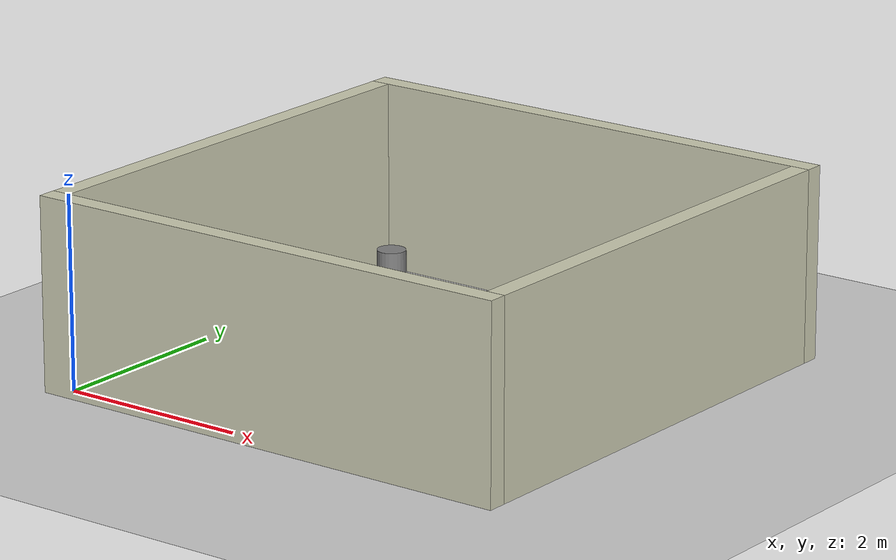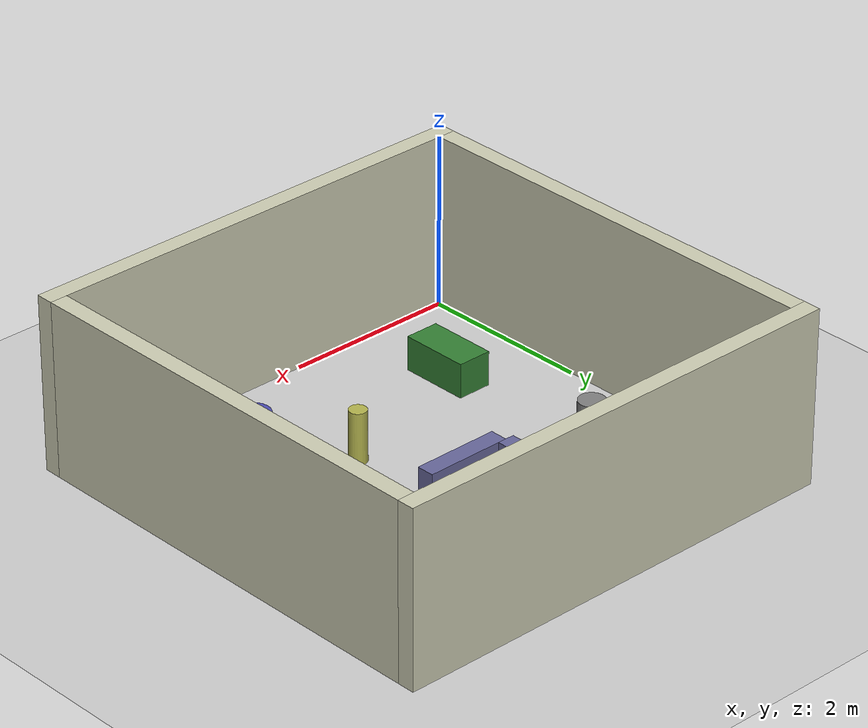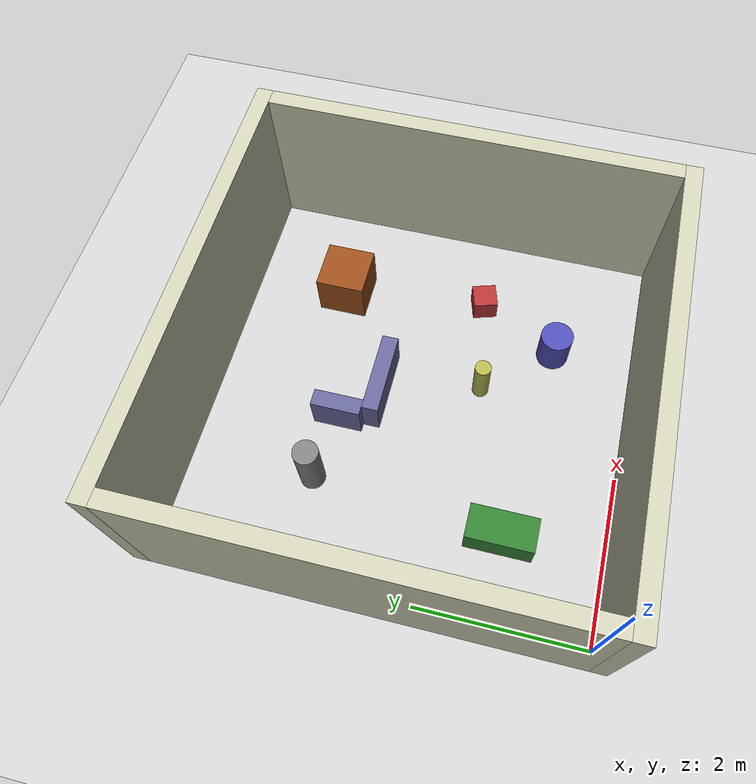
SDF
<?xml version="1.0" ?>
<sdf version="1.9">
  <world name="mapping_room">

    <!-- GAZEBO HARMONIC SYSTEM PLUGINS (required for gz-sim 8.x)       -->
    <plugin filename="gz-sim-physics-system"
            name="gz::sim::systems::Physics"/>
    <plugin filename="gz-sim-user-commands-system"
            name="gz::sim::systems::UserCommands"/>
    <plugin filename="gz-sim-scene-broadcaster-system"
            name="gz::sim::systems::SceneBroadcaster"/>
    <plugin filename="gz-sim-contact-system"
            name="gz::sim::systems::Contact"/>
    <!-- Sensors system: needed for gpu_lidar and imu sensors to work -->
    <plugin filename="gz-sim-sensors-system"
            name="gz::sim::systems::Sensors">
      <render_engine>ogre2</render_engine>
    </plugin>
    <!-- IMU system: required for IMU sensor plugin -->
    <plugin filename="gz-sim-imu-system"
            name="gz::sim::systems::Imu"/>

    <!-- PHYSICS ENGINE CONFIGURATION                                    -->
    <physics name="default_physics" type="ode">
      <max_step_size>0.001</max_step_size>
      <real_time_factor>1.0</real_time_factor>
      <real_time_update_rate>1000</real_time_update_rate>
    </physics>

    <!-- LIGHTING                                                        -->

    <!-- Directional sun light (inline — model://sun not available in Harmonic) -->
    <light type="directional" name="sun">
      <cast_shadows>true</cast_shadows>
      <pose>0 0 10 0 0 0</pose>
      <diffuse>0.8 0.8 0.8 1</diffuse>
      <specular>0.2 0.2 0.2 1</specular>
      <attenuation>
        <range>1000</range>
        <constant>0.9</constant>
        <linear>0.01</linear>
        <quadratic>0.001</quadratic>
      </attenuation>
      <direction>-0.5 0.1 -0.9</direction>
    </light>

    <!-- GROUND PLANE (inline — model://ground_plane not in Harmonic)   -->

    <model name="ground_plane">
      <static>true</static>
      <link name="link">
        <collision name="collision">
          <geometry>
            <plane>
              <normal>0 0 1</normal>
              <size>100 100</size>
            </plane>
          </geometry>
        </collision>
        <visual name="visual">
          <geometry>
            <plane>
              <normal>0 0 1</normal>
              <size>100 100</size>
            </plane>
          </geometry>
          <material>
            <ambient>0.8 0.8 0.8 1</ambient>
            <diffuse>0.8 0.8 0.8 1</diffuse>
            <specular>0.8 0.8 0.8 1</specular>
          </material>
        </visual>
      </link>
    </model>

    <!-- ROOM WALLS                                                      -->
    <!-- The room is 5m × 5m with 0.2m thick, 2.0m high walls          -->
    <!-- Walls are positioned so the interior is centered at (2.5, 2.5) -->

    <!-- North Wall (along X axis, at Y=5.0) -->
    <model name="north_wall">
      <static>true</static>
      <pose>2.5 5.1 1.0 0 0 0</pose>
      <link name="link">
        <collision name="collision">
          <geometry>
            <box><size>5.4 0.2 2.0</size></box>
          </geometry>
        </collision>
        <visual name="visual">
          <geometry>
            <box><size>5.4 0.2 2.0</size></box>
          </geometry>
          <material>
            <ambient>0.8 0.8 0.7 1</ambient>
            <diffuse>0.8 0.8 0.7 1</diffuse>
          </material>
        </visual>
      </link>
    </model>

    <!-- South Wall (along X axis, at Y=0.0) -->
    <model name="south_wall">
      <static>true</static>
      <pose>2.5 -0.1 1.0 0 0 0</pose>
      <link name="link">
        <collision name="collision">
          <geometry>
            <box><size>5.4 0.2 2.0</size></box>
          </geometry>
        </collision>
        <visual name="visual">
          <geometry>
            <box><size>5.4 0.2 2.0</size></box>
          </geometry>
          <material>
            <ambient>0.8 0.8 0.7 1</ambient>
            <diffuse>0.8 0.8 0.7 1</diffuse>
          </material>
        </visual>
      </link>
    </model>

    <!-- East Wall (along Y axis, at X=5.0) -->
    <model name="east_wall">
      <static>true</static>
      <pose>5.1 2.5 1.0 0 0 0</pose>
      <link name="link">
        <collision name="collision">
          <geometry>
            <box><size>0.2 5.0 2.0</size></box>
          </geometry>
        </collision>
        <visual name="visual">
          <geometry>
            <box><size>0.2 5.0 2.0</size></box>
          </geometry>
          <material>
            <ambient>0.8 0.8 0.7 1</ambient>
            <diffuse>0.8 0.8 0.7 1</diffuse>
          </material>
        </visual>
      </link>
    </model>

    <!-- West Wall (along Y axis, at X=0.0) -->
    <model name="west_wall">
      <static>true</static>
      <pose>-0.1 2.5 1.0 0 0 0</pose>
      <link name="link">
        <collision name="collision">
          <geometry>
            <box><size>0.2 5.0 2.0</size></box>
          </geometry>
        </collision>
        <visual name="visual">
          <geometry>
            <box><size>0.2 5.0 2.0</size></box>
          </geometry>
          <material>
            <ambient>0.8 0.8 0.7 1</ambient>
            <diffuse>0.8 0.8 0.7 1</diffuse>
          </material>
        </visual>
      </link>
    </model>

    <!-- OBSTACLES — Boxes (simulating furniture)                        -->

    <!-- Large box — simulates a table or shelf (top-right area) -->
    <model name="box_obstacle_1">
      <static>true</static>
      <pose>3.8 3.8 0.3 0 0 0</pose>
      <link name="link">
        <collision name="collision">
          <geometry>
            <box><size>0.6 0.6 0.6</size></box>
          </geometry>
        </collision>
        <visual name="visual">
          <geometry>
            <box><size>0.6 0.6 0.6</size></box>
          </geometry>
          <material>
            <ambient>0.6 0.3 0.1 1</ambient>
            <diffuse>0.6 0.3 0.1 1</diffuse>
          </material>
        </visual>
      </link>
    </model>

    <!-- Medium box — simulates a storage box (bottom-left area) -->
    <model name="box_obstacle_2">
      <static>true</static>
      <pose>1.0 1.2 0.2 0 0 0</pose>
      <link name="link">
        <collision name="collision">
          <geometry>
            <box><size>0.4 0.8 0.4</size></box>
          </geometry>
        </collision>
        <visual name="visual">
          <geometry>
            <box><size>0.4 0.8 0.4</size></box>
          </geometry>
          <material>
            <ambient>0.2 0.5 0.2 1</ambient>
            <diffuse>0.2 0.5 0.2 1</diffuse>
          </material>
        </visual>
      </link>
    </model>

    <!-- Small box — simulates a small piece of furniture (center-right) -->
    <model name="box_obstacle_3">
      <static>true</static>
      <pose>4.0 2.0 0.15 0 0 0.3</pose>
      <link name="link">
        <collision name="collision">
          <geometry>
            <box><size>0.3 0.3 0.3</size></box>
          </geometry>
        </collision>
        <visual name="visual">
          <geometry>
            <box><size>0.3 0.3 0.3</size></box>
          </geometry>
          <material>
            <ambient>0.7 0.2 0.2 1</ambient>
            <diffuse>0.7 0.2 0.2 1</diffuse>
          </material>
        </visual>
      </link>
    </model>

    <!-- L-shaped obstacle — two boxes forming an L (center area) -->
    <model name="l_shape_part1">
      <static>true</static>
      <pose>2.5 3.0 0.25 0 0 0</pose>
      <link name="link">
        <collision name="collision">
          <geometry>
            <box><size>1.0 0.2 0.5</size></box>
          </geometry>
        </collision>
        <visual name="visual">
          <geometry>
            <box><size>1.0 0.2 0.5</size></box>
          </geometry>
          <material>
            <ambient>0.4 0.4 0.6 1</ambient>
            <diffuse>0.4 0.4 0.6 1</diffuse>
          </material>
        </visual>
      </link>
    </model>

    <model name="l_shape_part2">
      <static>true</static>
      <pose>2.0 3.4 0.25 0 0 0</pose>
      <link name="link">
        <collision name="collision">
          <geometry>
            <box><size>0.2 0.6 0.5</size></box>
          </geometry>
        </collision>
        <visual name="visual">
          <geometry>
            <box><size>0.2 0.6 0.5</size></box>
          </geometry>
          <material>
            <ambient>0.4 0.4 0.6 1</ambient>
            <diffuse>0.4 0.4 0.6 1</diffuse>
          </material>
        </visual>
      </link>
    </model>

    <!-- OBSTACLES — Cylinders (simulating pillars, trash cans, etc.)    -->

    <!-- Cylinder 1 — simulates a pillar (center-left area) -->
    <model name="cylinder_obstacle_1">
      <static>true</static>
      <pose>1.2 3.5 0.4 0 0 0</pose>
      <link name="link">
        <collision name="collision">
          <geometry>
            <cylinder>
              <radius>0.15</radius>
              <length>0.8</length>
            </cylinder>
          </geometry>
        </collision>
        <visual name="visual">
          <geometry>
            <cylinder>
              <radius>0.15</radius>
              <length>0.8</length>
            </cylinder>
          </geometry>
          <material>
            <ambient>0.5 0.5 0.5 1</ambient>
            <diffuse>0.5 0.5 0.5 1</diffuse>
          </material>
        </visual>
      </link>
    </model>

    <!-- Cylinder 2 — simulates a trash can (bottom-right area) -->
    <model name="cylinder_obstacle_2">
      <static>true</static>
      <pose>3.5 1.0 0.25 0 0 0</pose>
      <link name="link">
        <collision name="collision">
          <geometry>
            <cylinder>
              <radius>0.2</radius>
              <length>0.5</length>
            </cylinder>
          </geometry>
        </collision>
        <visual name="visual">
          <geometry>
            <cylinder>
              <radius>0.2</radius>
              <length>0.5</length>
            </cylinder>
          </geometry>
          <material>
            <ambient>0.3 0.3 0.7 1</ambient>
            <diffuse>0.3 0.3 0.7 1</diffuse>
          </material>
        </visual>
      </link>
    </model>

    <!-- Cylinder 3 — small pillar near center -->
    <model name="cylinder_obstacle_3">
      <static>true</static>
      <pose>2.8 1.8 0.3 0 0 0</pose>
      <link name="link">
        <collision name="collision">
          <geometry>
            <cylinder>
              <radius>0.1</radius>
              <length>0.6</length>
            </cylinder>
          </geometry>
        </collision>
        <visual name="visual">
          <geometry>
            <cylinder>
              <radius>0.1</radius>
              <length>0.6</length>
            </cylinder>
          </geometry>
          <material>
            <ambient>0.7 0.7 0.3 1</ambient>
            <diffuse>0.7 0.7 0.3 1</diffuse>
          </material>
        </visual>
      </link>
    </model>

    <!-- SCENE CONFIGURATION                                             -->

    <scene>
      <ambient>0.6 0.6 0.6 1.0</ambient>
      <background>0.7 0.7 0.7 1.0</background>
      <shadows>true</shadows>
    </scene>

    <!-- Camera viewpoint (overview of the room) -->
    <gui fullscreen='0'>
      <camera name='user_camera'>
        <pose>2.5 -2.0 8.0 0.0 1.2 1.57</pose>
        <view_controller>orbit</view_controller>
      </camera>
    </gui>

  </world>
</sdf>
